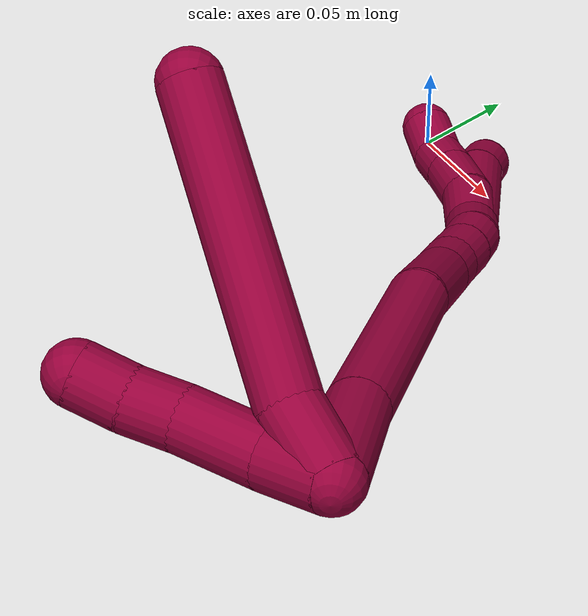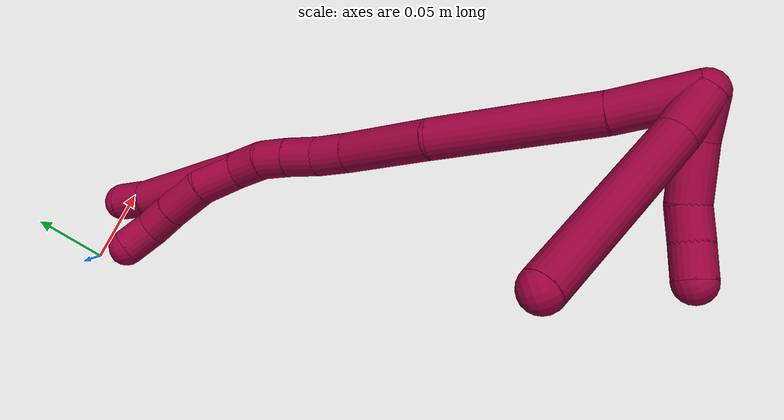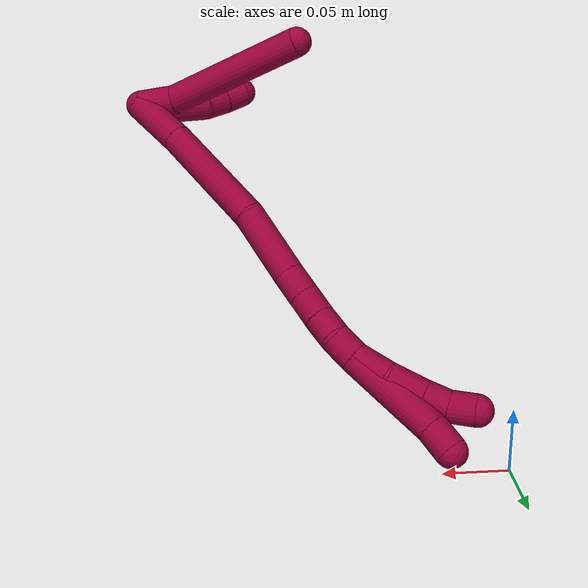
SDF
<sdf version="1.7">
 <world name="default">
  <model name="8">
   <static>0</static>
   <link name="8">
    <collision name="collision-cylinder-e_1_2_8">
     <pose>0.000553 -0.009093 -0.011714 2.48149 0.03725 0.108638</pose>
     <geometry><cylinder><radius>0.0125</radius><length>0.02968</length></cylinder></geometry>
     <surface>
      <friction><ode><mu>1.16</mu><mu2>1.16</mu2><slip1>0</slip1><slip2>0</slip2></ode></friction>
      <contact><ode><kp>1e+06</kp><kd>1</kd><max_vel>0</max_vel><min_depth>0.001</min_depth></ode></contact>
     </surface>
    </collision>
    <visual name="visual-cylinder-e_1_2_8">
     <pose>0.000553 -0.009093 -0.011714 2.48149 0.03725 0.108638</pose>
     <geometry><cylinder><radius>0.0125</radius><length>0.02968</length></cylinder></geometry>
     <material><ambient>0.584314 0 0.227451 1</ambient></material>
    </visual>
    <collision name="collision-cylinder-e_2_8_6">
     <pose>-0.015999 -0.056182 -0.066823 2.42243 -0.288282 -0.736942</pose>
     <geometry><cylinder><radius>0.0125</radius><length>0.12032</length></cylinder></geometry>
     <surface>
      <friction><ode><mu>1.16</mu><mu2>1.16</mu2><slip1>0</slip1><slip2>0</slip2></ode></friction>
      <contact><ode><kp>1e+06</kp><kd>1</kd><max_vel>0</max_vel><min_depth>0.001</min_depth></ode></contact>
     </surface>
    </collision>
    <visual name="visual-cylinder-e_2_8_6">
     <pose>-0.015999 -0.056182 -0.066823 2.42243 -0.288282 -0.736942</pose>
     <geometry><cylinder><radius>0.0125</radius><length>0.12032</length></cylinder></geometry>
     <material><ambient>0.584314 0 0.227451 1</ambient></material>
    </visual>
    <collision name="collision-cylinder-e_1_2_9">
     <pose>0.007756 -0.007794 -0.006673 2.27882 0.647252 1.25945</pose>
     <geometry><cylinder><radius>0.0125</radius><length>0.025724</length></cylinder></geometry>
     <surface>
      <friction><ode><mu>1.16</mu><mu2>1.16</mu2><slip1>0</slip1><slip2>0</slip2></ode></friction>
      <contact><ode><kp>1e+06</kp><kd>1</kd><max_vel>0</max_vel><min_depth>0.001</min_depth></ode></contact>
     </surface>
    </collision>
    <visual name="visual-cylinder-e_1_2_9">
     <pose>0.007756 -0.007794 -0.006673 2.27882 0.647252 1.25945</pose>
     <geometry><cylinder><radius>0.0125</radius><length>0.025724</length></cylinder></geometry>
     <material><ambient>0.584314 0 0.227451 1</ambient></material>
    </visual>
    <collision name="collision-cylinder-e_2_9_10">
     <pose>0.024017 -0.028152 -0.021176 2.12818 0.521524 0.896259</pose>
     <geometry><cylinder><radius>0.0125</radius><length>0.034146</length></cylinder></geometry>
     <surface>
      <friction><ode><mu>1.16</mu><mu2>1.16</mu2><slip1>0</slip1><slip2>0</slip2></ode></friction>
      <contact><ode><kp>1e+06</kp><kd>1</kd><max_vel>0</max_vel><min_depth>0.001</min_depth></ode></contact>
     </surface>
    </collision>
    <visual name="visual-cylinder-e_2_9_10">
     <pose>0.024017 -0.028152 -0.021176 2.12818 0.521524 0.896259</pose>
     <geometry><cylinder><radius>0.0125</radius><length>0.034146</length></cylinder></geometry>
     <material><ambient>0.584314 0 0.227451 1</ambient></material>
    </visual>
    <collision name="collision-cylinder-e_3_10_11">
     <pose>0.036959 -0.049302 -0.031722 1.87709 0.45761 0.615592</pose>
     <geometry><cylinder><radius>0.0125</radius><length>0.020078</length></cylinder></geometry>
     <surface>
      <friction><ode><mu>1.16</mu><mu2>1.16</mu2><slip1>0</slip1><slip2>0</slip2></ode></friction>
      <contact><ode><kp>1e+06</kp><kd>1</kd><max_vel>0</max_vel><min_depth>0.001</min_depth></ode></contact>
     </surface>
    </collision>
    <visual name="visual-cylinder-e_3_10_11">
     <pose>0.036959 -0.049302 -0.031722 1.87709 0.45761 0.615592</pose>
     <geometry><cylinder><radius>0.0125</radius><length>0.020078</length></cylinder></geometry>
     <material><ambient>0.584314 0 0.227451 1</ambient></material>
    </visual>
    <collision name="collision-cylinder-e_4_11_5">
     <pose>0.044753 -0.066863 -0.037387 1.88828 0.341648 0.467811</pose>
     <geometry><cylinder><radius>0.0125</radius><length>0.020052</length></cylinder></geometry>
     <surface>
      <friction><ode><mu>1.16</mu><mu2>1.16</mu2><slip1>0</slip1><slip2>0</slip2></ode></friction>
      <contact><ode><kp>1e+06</kp><kd>1</kd><max_vel>0</max_vel><min_depth>0.001</min_depth></ode></contact>
     </surface>
    </collision>
    <visual name="visual-cylinder-e_4_11_5">
     <pose>0.044753 -0.066863 -0.037387 1.88828 0.341648 0.467811</pose>
     <geometry><cylinder><radius>0.0125</radius><length>0.020052</length></cylinder></geometry>
     <material><ambient>0.584314 0 0.227451 1</ambient></material>
    </visual>
    <collision name="collision-cylinder-e_1_2_12">
     <pose>0.002464 0.006315 -0.024563 -2.88997 0.096855 -0.731852</pose>
     <geometry><cylinder><radius>0.0125</radius><length>0.050962</length></cylinder></geometry>
     <surface>
      <friction><ode><mu>1.16</mu><mu2>1.16</mu2><slip1>0</slip1><slip2>0</slip2></ode></friction>
      <contact><ode><kp>1e+06</kp><kd>1</kd><max_vel>0</max_vel><min_depth>0.001</min_depth></ode></contact>
     </surface>
    </collision>
    <visual name="visual-cylinder-e_1_2_12">
     <pose>0.002464 0.006315 -0.024563 -2.88997 0.096855 -0.731852</pose>
     <geometry><cylinder><radius>0.0125</radius><length>0.050962</length></cylinder></geometry>
     <material><ambient>0.584314 0 0.227451 1</ambient></material>
    </visual>
    <collision name="collision-cylinder-e_2_12_13">
     <pose>0.008373 0.028701 -0.09774 -2.8223 0.067183 -0.411492</pose>
     <geometry><cylinder><radius>0.0125</radius><length>0.102635</length></cylinder></geometry>
     <surface>
      <friction><ode><mu>1.16</mu><mu2>1.16</mu2><slip1>0</slip1><slip2>0</slip2></ode></friction>
      <contact><ode><kp>1e+06</kp><kd>1</kd><max_vel>0</max_vel><min_depth>0.001</min_depth></ode></contact>
     </surface>
    </collision>
    <visual name="visual-cylinder-e_2_12_13">
     <pose>0.008373 0.028701 -0.09774 -2.8223 0.067183 -0.411492</pose>
     <geometry><cylinder><radius>0.0125</radius><length>0.102635</length></cylinder></geometry>
     <material><ambient>0.584314 0 0.227451 1</ambient></material>
    </visual>
    <collision name="collision-cylinder-e_3_13_14">
     <pose>0.019536 0.05708 -0.172328 -2.69913 0.262339 -1.06098</pose>
     <geometry><cylinder><radius>0.0125</radius><length>0.059521</length></cylinder></geometry>
     <surface>
      <friction><ode><mu>1.16</mu><mu2>1.16</mu2><slip1>0</slip1><slip2>0</slip2></ode></friction>
      <contact><ode><kp>1e+06</kp><kd>1</kd><max_vel>0</max_vel><min_depth>0.001</min_depth></ode></contact>
     </surface>
    </collision>
    <visual name="visual-cylinder-e_3_13_14">
     <pose>0.019536 0.05708 -0.172328 -2.69913 0.262339 -1.06098</pose>
     <geometry><cylinder><radius>0.0125</radius><length>0.059521</length></cylinder></geometry>
     <material><ambient>0.584314 0 0.227451 1</ambient></material>
    </visual>
    <collision name="collision-cylinder-e_4_14_15">
     <pose>0.029335 0.074021 -0.208632 -2.71979 0.181706 -0.804676</pose>
     <geometry><cylinder><radius>0.0125</radius><length>0.023024</length></cylinder></geometry>
     <surface>
      <friction><ode><mu>1.16</mu><mu2>1.16</mu2><slip1>0</slip1><slip2>0</slip2></ode></friction>
      <contact><ode><kp>1e+06</kp><kd>1</kd><max_vel>0</max_vel><min_depth>0.001</min_depth></ode></contact>
     </surface>
    </collision>
    <visual name="visual-cylinder-e_4_14_15">
     <pose>0.029335 0.074021 -0.208632 -2.71979 0.181706 -0.804676</pose>
     <geometry><cylinder><radius>0.0125</radius><length>0.023024</length></cylinder></geometry>
     <material><ambient>0.584314 0 0.227451 1</ambient></material>
    </visual>
    <collision name="collision-cylinder-e_5_15_16">
     <pose>0.032236 0.083411 -0.229061 -2.70162 0.073447 -0.32571</pose>
     <geometry><cylinder><radius>0.0125</radius><length>0.022384</length></cylinder></geometry>
     <surface>
      <friction><ode><mu>1.16</mu><mu2>1.16</mu2><slip1>0</slip1><slip2>0</slip2></ode></friction>
      <contact><ode><kp>1e+06</kp><kd>1</kd><max_vel>0</max_vel><min_depth>0.001</min_depth></ode></contact>
     </surface>
    </collision>
    <visual name="visual-cylinder-e_5_15_16">
     <pose>0.032236 0.083411 -0.229061 -2.70162 0.073447 -0.32571</pose>
     <geometry><cylinder><radius>0.0125</radius><length>0.022384</length></cylinder></geometry>
     <material><ambient>0.584314 0 0.227451 1</ambient></material>
    </visual>
    <collision name="collision-cylinder-e_6_16_17">
     <pose>0.033942 0.091909 -0.248418 -2.75724 0.088289 -0.446473</pose>
     <geometry><cylinder><radius>0.0125</radius><length>0.020052</length></cylinder></geometry>
     <surface>
      <friction><ode><mu>1.16</mu><mu2>1.16</mu2><slip1>0</slip1><slip2>0</slip2></ode></friction>
      <contact><ode><kp>1e+06</kp><kd>1</kd><max_vel>0</max_vel><min_depth>0.001</min_depth></ode></contact>
     </surface>
    </collision>
    <visual name="visual-cylinder-e_6_16_17">
     <pose>0.033942 0.091909 -0.248418 -2.75724 0.088289 -0.446473</pose>
     <geometry><cylinder><radius>0.0125</radius><length>0.020052</length></cylinder></geometry>
     <material><ambient>0.584314 0 0.227451 1</ambient></material>
    </visual>
    <collision name="collision-cylinder-e_7_17_1">
     <pose>0.037873 0.098235 -0.267616 -2.88758 0.288473 -1.69922</pose>
     <geometry><cylinder><radius>0.0125</radius><length>0.021422</length></cylinder></geometry>
     <surface>
      <friction><ode><mu>1.16</mu><mu2>1.16</mu2><slip1>0</slip1><slip2>0</slip2></ode></friction>
      <contact><ode><kp>1e+06</kp><kd>1</kd><max_vel>0</max_vel><min_depth>0.001</min_depth></ode></contact>
     </surface>
    </collision>
    <visual name="visual-cylinder-e_7_17_1">
     <pose>0.037873 0.098235 -0.267616 -2.88758 0.288473 -1.69922</pose>
     <geometry><cylinder><radius>0.0125</radius><length>0.021422</length></cylinder></geometry>
     <material><ambient>0.584314 0 0.227451 1</ambient></material>
    </visual>
    <collision name="collision-cylinder-e_1_1_18">
     <pose>0.042603 0.101288 -0.292141 -3.10921 0.114816 -2.59226</pose>
     <geometry><cylinder><radius>0.0125</radius><length>0.029382</length></cylinder></geometry>
     <surface>
      <friction><ode><mu>1.16</mu><mu2>1.16</mu2><slip1>0</slip1><slip2>0</slip2></ode></friction>
      <contact><ode><kp>1e+06</kp><kd>1</kd><max_vel>0</max_vel><min_depth>0.001</min_depth></ode></contact>
     </surface>
    </collision>
    <visual name="visual-cylinder-e_1_1_18">
     <pose>0.042603 0.101288 -0.292141 -3.10921 0.114816 -2.59226</pose>
     <geometry><cylinder><radius>0.0125</radius><length>0.029382</length></cylinder></geometry>
     <material><ambient>0.584314 0 0.227451 1</ambient></material>
    </visual>
    <collision name="collision-cylinder-e_2_18_19">
     <pose>0.048429 0.100187 -0.320494 3.02779 0.290513 2.39891</pose>
     <geometry><cylinder><radius>0.0125</radius><length>0.028922</length></cylinder></geometry>
     <surface>
      <friction><ode><mu>1.16</mu><mu2>1.16</mu2><slip1>0</slip1><slip2>0</slip2></ode></friction>
      <contact><ode><kp>1e+06</kp><kd>1</kd><max_vel>0</max_vel><min_depth>0.001</min_depth></ode></contact>
     </surface>
    </collision>
    <visual name="visual-cylinder-e_2_18_19">
     <pose>0.048429 0.100187 -0.320494 3.02779 0.290513 2.39891</pose>
     <geometry><cylinder><radius>0.0125</radius><length>0.028922</length></cylinder></geometry>
     <material><ambient>0.584314 0 0.227451 1</ambient></material>
    </visual>
    <collision name="collision-cylinder-e_3_19_20">
     <pose>0.055679 0.096885 -0.34379 2.96224 0.310479 2.09858</pose>
     <geometry><cylinder><radius>0.0125</radius><length>0.020345</length></cylinder></geometry>
     <surface>
      <friction><ode><mu>1.16</mu><mu2>1.16</mu2><slip1>0</slip1><slip2>0</slip2></ode></friction>
      <contact><ode><kp>1e+06</kp><kd>1</kd><max_vel>0</max_vel><min_depth>0.001</min_depth></ode></contact>
     </surface>
    </collision>
    <visual name="visual-cylinder-e_3_19_20">
     <pose>0.055679 0.096885 -0.34379 2.96224 0.310479 2.09858</pose>
     <geometry><cylinder><radius>0.0125</radius><length>0.020345</length></cylinder></geometry>
     <material><ambient>0.584314 0 0.227451 1</ambient></material>
    </visual>
    <collision name="collision-cylinder-e_4_20_4">
     <pose>0.058855 0.091461 -0.363335 2.78799 0.006385 0.035732</pose>
     <geometry><cylinder><radius>0.0125</radius><length>0.02135</length></cylinder></geometry>
     <surface>
      <friction><ode><mu>1.16</mu><mu2>1.16</mu2><slip1>0</slip1><slip2>0</slip2></ode></friction>
      <contact><ode><kp>1e+06</kp><kd>1</kd><max_vel>0</max_vel><min_depth>0.001</min_depth></ode></contact>
     </surface>
    </collision>
    <visual name="visual-cylinder-e_4_20_4">
     <pose>0.058855 0.091461 -0.363335 2.78799 0.006385 0.035732</pose>
     <geometry><cylinder><radius>0.0125</radius><length>0.02135</length></cylinder></geometry>
     <material><ambient>0.584314 0 0.227451 1</ambient></material>
    </visual>
    <collision name="collision-cylinder-e_1_1_21">
     <pose>0.047172 0.108906 -0.315016 -2.92888 0.161711 -1.29849</pose>
     <geometry><cylinder><radius>0.0125</radius><length>0.077663</length></cylinder></geometry>
     <surface>
      <friction><ode><mu>1.16</mu><mu2>1.16</mu2><slip1>0</slip1><slip2>0</slip2></ode></friction>
      <contact><ode><kp>1e+06</kp><kd>1</kd><max_vel>0</max_vel><min_depth>0.001</min_depth></ode></contact>
     </surface>
    </collision>
    <visual name="visual-cylinder-e_1_1_21">
     <pose>0.047172 0.108906 -0.315016 -2.92888 0.161711 -1.29849</pose>
     <geometry><cylinder><radius>0.0125</radius><length>0.077663</length></cylinder></geometry>
     <material><ambient>0.584314 0 0.227451 1</ambient></material>
    </visual>
    <collision name="collision-cylinder-e_2_21_3">
     <pose>0.054978 0.121072 -0.362758 -2.76419 0.139589 -0.701825</pose>
     <geometry><cylinder><radius>0.0125</radius><length>0.022337</length></cylinder></geometry>
     <surface>
      <friction><ode><mu>1.16</mu><mu2>1.16</mu2><slip1>0</slip1><slip2>0</slip2></ode></friction>
      <contact><ode><kp>1e+06</kp><kd>1</kd><max_vel>0</max_vel><min_depth>0.001</min_depth></ode></contact>
     </surface>
    </collision>
    <visual name="visual-cylinder-e_2_21_3">
     <pose>0.054978 0.121072 -0.362758 -2.76419 0.139589 -0.701825</pose>
     <geometry><cylinder><radius>0.0125</radius><length>0.022337</length></cylinder></geometry>
     <material><ambient>0.584314 0 0.227451 1</ambient></material>
    </visual>
    <collision name="collision-sphere-3">
     <pose>0.056532 0.125148 -0.37304 0 -0 0</pose>
     <geometry><sphere><radius>0.0125</radius></sphere></geometry>
     <surface>
      <friction><ode><mu>1.16</mu><mu2>1.16</mu2><slip1>0</slip1><slip2>0</slip2></ode></friction>
      <contact><ode><kp>1e+06</kp><kd>1</kd><max_vel>0</max_vel><min_depth>0.001</min_depth></ode></contact>
     </surface>
    </collision>
    <visual name="visual-sphere-3">
     <pose>0.056532 0.125148 -0.37304 0 -0 0</pose>
     <geometry><sphere><radius>0.0125</radius></sphere></geometry>
     <material><ambient>0.584314 0 0.227451 1</ambient></material>
    </visual>
    <collision name="collision-sphere-21">
     <pose>0.053424 0.116997 -0.352476 0 -0 0</pose>
     <geometry><sphere><radius>0.0125</radius></sphere></geometry>
     <surface>
      <friction><ode><mu>1.16</mu><mu2>1.16</mu2><slip1>0</slip1><slip2>0</slip2></ode></friction>
      <contact><ode><kp>1e+06</kp><kd>1</kd><max_vel>0</max_vel><min_depth>0.001</min_depth></ode></contact>
     </surface>
    </collision>
    <visual name="visual-sphere-21">
     <pose>0.053424 0.116997 -0.352476 0 -0 0</pose>
     <geometry><sphere><radius>0.0125</radius></sphere></geometry>
     <material><ambient>0.584314 0 0.227451 1</ambient></material>
    </visual>
    <collision name="collision-sphere-4">
     <pose>0.058923 0.087764 -0.37335 0 -0 0</pose>
     <geometry><sphere><radius>0.0125</radius></sphere></geometry>
     <surface>
      <friction><ode><mu>1.16</mu><mu2>1.16</mu2><slip1>0</slip1><slip2>0</slip2></ode></friction>
      <contact><ode><kp>1e+06</kp><kd>1</kd><max_vel>0</max_vel><min_depth>0.001</min_depth></ode></contact>
     </surface>
    </collision>
    <visual name="visual-sphere-4">
     <pose>0.058923 0.087764 -0.37335 0 -0 0</pose>
     <geometry><sphere><radius>0.0125</radius></sphere></geometry>
     <material><ambient>0.584314 0 0.227451 1</ambient></material>
    </visual>
    <collision name="collision-sphere-20">
     <pose>0.058787 0.095157 -0.353321 0 -0 0</pose>
     <geometry><sphere><radius>0.0125</radius></sphere></geometry>
     <surface>
      <friction><ode><mu>1.16</mu><mu2>1.16</mu2><slip1>0</slip1><slip2>0</slip2></ode></friction>
      <contact><ode><kp>1e+06</kp><kd>1</kd><max_vel>0</max_vel><min_depth>0.001</min_depth></ode></contact>
     </surface>
    </collision>
    <visual name="visual-sphere-20">
     <pose>0.058787 0.095157 -0.353321 0 -0 0</pose>
     <geometry><sphere><radius>0.0125</radius></sphere></geometry>
     <material><ambient>0.584314 0 0.227451 1</ambient></material>
    </visual>
    <collision name="collision-sphere-11">
     <pose>0.041394 -0.057889 -0.034438 0 -0 0</pose>
     <geometry><sphere><radius>0.0125</radius></sphere></geometry>
     <surface>
      <friction><ode><mu>1.16</mu><mu2>1.16</mu2><slip1>0</slip1><slip2>0</slip2></ode></friction>
      <contact><ode><kp>1e+06</kp><kd>1</kd><max_vel>0</max_vel><min_depth>0.001</min_depth></ode></contact>
     </surface>
    </collision>
    <visual name="visual-sphere-11">
     <pose>0.041394 -0.057889 -0.034438 0 -0 0</pose>
     <geometry><sphere><radius>0.0125</radius></sphere></geometry>
     <material><ambient>0.584314 0 0.227451 1</ambient></material>
    </visual>
    <collision name="collision-sphere-10">
     <pose>0.032523 -0.040715 -0.029007 0 -0 0</pose>
     <geometry><sphere><radius>0.0125</radius></sphere></geometry>
     <surface>
      <friction><ode><mu>1.16</mu><mu2>1.16</mu2><slip1>0</slip1><slip2>0</slip2></ode></friction>
      <contact><ode><kp>1e+06</kp><kd>1</kd><max_vel>0</max_vel><min_depth>0.001</min_depth></ode></contact>
     </surface>
    </collision>
    <visual name="visual-sphere-10">
     <pose>0.032523 -0.040715 -0.029007 0 -0 0</pose>
     <geometry><sphere><radius>0.0125</radius></sphere></geometry>
     <material><ambient>0.584314 0 0.227451 1</ambient></material>
    </visual>
    <collision name="collision-sphere-6">
     <pose>-0.033102 -0.094178 -0.110217 0 -0 0</pose>
     <geometry><sphere><radius>0.0125</radius></sphere></geometry>
     <surface>
      <friction><ode><mu>1.16</mu><mu2>1.16</mu2><slip1>0</slip1><slip2>0</slip2></ode></friction>
      <contact><ode><kp>1e+06</kp><kd>1</kd><max_vel>0</max_vel><min_depth>0.001</min_depth></ode></contact>
     </surface>
    </collision>
    <visual name="visual-sphere-6">
     <pose>-0.033102 -0.094178 -0.110217 0 -0 0</pose>
     <geometry><sphere><radius>0.0125</radius></sphere></geometry>
     <material><ambient>0.584314 0 0.227451 1</ambient></material>
    </visual>
    <collision name="collision-sphere-9">
     <pose>0.015512 -0.015589 -0.013346 0 -0 0</pose>
     <geometry><sphere><radius>0.0125</radius></sphere></geometry>
     <surface>
      <friction><ode><mu>1.16</mu><mu2>1.16</mu2><slip1>0</slip1><slip2>0</slip2></ode></friction>
      <contact><ode><kp>1e+06</kp><kd>1</kd><max_vel>0</max_vel><min_depth>0.001</min_depth></ode></contact>
     </surface>
    </collision>
    <visual name="visual-sphere-9">
     <pose>0.015512 -0.015589 -0.013346 0 -0 0</pose>
     <geometry><sphere><radius>0.0125</radius></sphere></geometry>
     <material><ambient>0.584314 0 0.227451 1</ambient></material>
    </visual>
    <collision name="collision-sphere-2">
     <geometry><sphere><radius>0.0125</radius></sphere></geometry>
     <surface>
      <friction><ode><mu>1.16</mu><mu2>1.16</mu2><slip1>0</slip1><slip2>0</slip2></ode></friction>
      <contact><ode><kp>1e+06</kp><kd>1</kd><max_vel>0</max_vel><min_depth>0.001</min_depth></ode></contact>
     </surface>
    </collision>
    <visual name="visual-sphere-2">
     <geometry><sphere><radius>0.0125</radius></sphere></geometry>
     <material><ambient>0.584314 0 0.227451 1</ambient></material>
    </visual>
    <collision name="collision-sphere-19">
     <pose>0.052571 0.098613 -0.334259 0 -0 0</pose>
     <geometry><sphere><radius>0.0125</radius></sphere></geometry>
     <surface>
      <friction><ode><mu>1.16</mu><mu2>1.16</mu2><slip1>0</slip1><slip2>0</slip2></ode></friction>
      <contact><ode><kp>1e+06</kp><kd>1</kd><max_vel>0</max_vel><min_depth>0.001</min_depth></ode></contact>
     </surface>
    </collision>
    <visual name="visual-sphere-19">
     <pose>0.052571 0.098613 -0.334259 0 -0 0</pose>
     <geometry><sphere><radius>0.0125</radius></sphere></geometry>
     <material><ambient>0.584314 0 0.227451 1</ambient></material>
    </visual>
    <collision name="collision-sphere-8">
     <pose>0.001105 -0.018187 -0.023429 0 -0 0</pose>
     <geometry><sphere><radius>0.0125</radius></sphere></geometry>
     <surface>
      <friction><ode><mu>1.16</mu><mu2>1.16</mu2><slip1>0</slip1><slip2>0</slip2></ode></friction>
      <contact><ode><kp>1e+06</kp><kd>1</kd><max_vel>0</max_vel><min_depth>0.001</min_depth></ode></contact>
     </surface>
    </collision>
    <visual name="visual-sphere-8">
     <pose>0.001105 -0.018187 -0.023429 0 -0 0</pose>
     <geometry><sphere><radius>0.0125</radius></sphere></geometry>
     <material><ambient>0.584314 0 0.227451 1</ambient></material>
    </visual>
    <collision name="collision-sphere-5">
     <pose>0.048112 -0.075837 -0.040336 0 -0 0</pose>
     <geometry><sphere><radius>0.0125</radius></sphere></geometry>
     <surface>
      <friction><ode><mu>1.16</mu><mu2>1.16</mu2><slip1>0</slip1><slip2>0</slip2></ode></friction>
      <contact><ode><kp>1e+06</kp><kd>1</kd><max_vel>0</max_vel><min_depth>0.001</min_depth></ode></contact>
     </surface>
    </collision>
    <visual name="visual-sphere-5">
     <pose>0.048112 -0.075837 -0.040336 0 -0 0</pose>
     <geometry><sphere><radius>0.0125</radius></sphere></geometry>
     <material><ambient>0.584314 0 0.227451 1</ambient></material>
    </visual>
    <collision name="collision-sphere-12">
     <pose>0.004928 0.012629 -0.049126 0 -0 0</pose>
     <geometry><sphere><radius>0.0125</radius></sphere></geometry>
     <surface>
      <friction><ode><mu>1.16</mu><mu2>1.16</mu2><slip1>0</slip1><slip2>0</slip2></ode></friction>
      <contact><ode><kp>1e+06</kp><kd>1</kd><max_vel>0</max_vel><min_depth>0.001</min_depth></ode></contact>
     </surface>
    </collision>
    <visual name="visual-sphere-12">
     <pose>0.004928 0.012629 -0.049126 0 -0 0</pose>
     <geometry><sphere><radius>0.0125</radius></sphere></geometry>
     <material><ambient>0.584314 0 0.227451 1</ambient></material>
    </visual>
    <collision name="collision-sphere-13">
     <pose>0.011818 0.044773 -0.146354 0 -0 0</pose>
     <geometry><sphere><radius>0.0125</radius></sphere></geometry>
     <surface>
      <friction><ode><mu>1.16</mu><mu2>1.16</mu2><slip1>0</slip1><slip2>0</slip2></ode></friction>
      <contact><ode><kp>1e+06</kp><kd>1</kd><max_vel>0</max_vel><min_depth>0.001</min_depth></ode></contact>
     </surface>
    </collision>
    <visual name="visual-sphere-13">
     <pose>0.011818 0.044773 -0.146354 0 -0 0</pose>
     <geometry><sphere><radius>0.0125</radius></sphere></geometry>
     <material><ambient>0.584314 0 0.227451 1</ambient></material>
    </visual>
    <collision name="collision-sphere-14">
     <pose>0.027255 0.069386 -0.198302 0 -0 0</pose>
     <geometry><sphere><radius>0.0125</radius></sphere></geometry>
     <surface>
      <friction><ode><mu>1.16</mu><mu2>1.16</mu2><slip1>0</slip1><slip2>0</slip2></ode></friction>
      <contact><ode><kp>1e+06</kp><kd>1</kd><max_vel>0</max_vel><min_depth>0.001</min_depth></ode></contact>
     </surface>
    </collision>
    <visual name="visual-sphere-14">
     <pose>0.027255 0.069386 -0.198302 0 -0 0</pose>
     <geometry><sphere><radius>0.0125</radius></sphere></geometry>
     <material><ambient>0.584314 0 0.227451 1</ambient></material>
    </visual>
    <collision name="collision-sphere-15">
     <pose>0.031415 0.078657 -0.218962 0 -0 0</pose>
     <geometry><sphere><radius>0.0125</radius></sphere></geometry>
     <surface>
      <friction><ode><mu>1.16</mu><mu2>1.16</mu2><slip1>0</slip1><slip2>0</slip2></ode></friction>
      <contact><ode><kp>1e+06</kp><kd>1</kd><max_vel>0</max_vel><min_depth>0.001</min_depth></ode></contact>
     </surface>
    </collision>
    <visual name="visual-sphere-15">
     <pose>0.031415 0.078657 -0.218962 0 -0 0</pose>
     <geometry><sphere><radius>0.0125</radius></sphere></geometry>
     <material><ambient>0.584314 0 0.227451 1</ambient></material>
    </visual>
    <collision name="collision-sphere-16">
     <pose>0.033058 0.088165 -0.23916 0 -0 0</pose>
     <geometry><sphere><radius>0.0125</radius></sphere></geometry>
     <surface>
      <friction><ode><mu>1.16</mu><mu2>1.16</mu2><slip1>0</slip1><slip2>0</slip2></ode></friction>
      <contact><ode><kp>1e+06</kp><kd>1</kd><max_vel>0</max_vel><min_depth>0.001</min_depth></ode></contact>
     </surface>
    </collision>
    <visual name="visual-sphere-16">
     <pose>0.033058 0.088165 -0.23916 0 -0 0</pose>
     <geometry><sphere><radius>0.0125</radius></sphere></geometry>
     <material><ambient>0.584314 0 0.227451 1</ambient></material>
    </visual>
    <collision name="collision-sphere-17">
     <pose>0.034826 0.095654 -0.257676 0 -0 0</pose>
     <geometry><sphere><radius>0.0125</radius></sphere></geometry>
     <surface>
      <friction><ode><mu>1.16</mu><mu2>1.16</mu2><slip1>0</slip1><slip2>0</slip2></ode></friction>
      <contact><ode><kp>1e+06</kp><kd>1</kd><max_vel>0</max_vel><min_depth>0.001</min_depth></ode></contact>
     </surface>
    </collision>
    <visual name="visual-sphere-17">
     <pose>0.034826 0.095654 -0.257676 0 -0 0</pose>
     <geometry><sphere><radius>0.0125</radius></sphere></geometry>
     <material><ambient>0.584314 0 0.227451 1</ambient></material>
    </visual>
    <collision name="collision-sphere-1">
     <pose>0.04092 0.100815 -0.277555 0 -0 0</pose>
     <geometry><sphere><radius>0.0125</radius></sphere></geometry>
     <surface>
      <friction><ode><mu>1.16</mu><mu2>1.16</mu2><slip1>0</slip1><slip2>0</slip2></ode></friction>
      <contact><ode><kp>1e+06</kp><kd>1</kd><max_vel>0</max_vel><min_depth>0.001</min_depth></ode></contact>
     </surface>
    </collision>
    <visual name="visual-sphere-1">
     <pose>0.04092 0.100815 -0.277555 0 -0 0</pose>
     <geometry><sphere><radius>0.0125</radius></sphere></geometry>
     <material><ambient>0.584314 0 0.227451 1</ambient></material>
    </visual>
    <collision name="collision-sphere-18">
     <pose>0.044286 0.10176 -0.306728 0 -0 0</pose>
     <geometry><sphere><radius>0.0125</radius></sphere></geometry>
     <surface>
      <friction><ode><mu>1.16</mu><mu2>1.16</mu2><slip1>0</slip1><slip2>0</slip2></ode></friction>
      <contact><ode><kp>1e+06</kp><kd>1</kd><max_vel>0</max_vel><min_depth>0.001</min_depth></ode></contact>
     </surface>
    </collision>
    <visual name="visual-sphere-18">
     <pose>0.044286 0.10176 -0.306728 0 -0 0</pose>
     <geometry><sphere><radius>0.0125</radius></sphere></geometry>
     <material><ambient>0.584314 0 0.227451 1</ambient></material>
    </visual>
    <inertial>
     <pose>0.020961 0.032829 -0.15737 0 -0 0</pose>
     <mass>0.75</mass>
     <inertia>
      <ixx>4.3e-05</ixx>
      <ixy>0</ixy>
      <ixz>0</ixz>
      <iyy>-0.000375</iyy>
      <iyz>0</iyz>
      <izz>1.9e-05</izz>
     </inertia>
    </inertial>
   </link>
   <pose>0.267634 -0.261633 0.216431 -1.23262 0.886284 -1.98485</pose>
  </model>
 </world>
</sdf>
